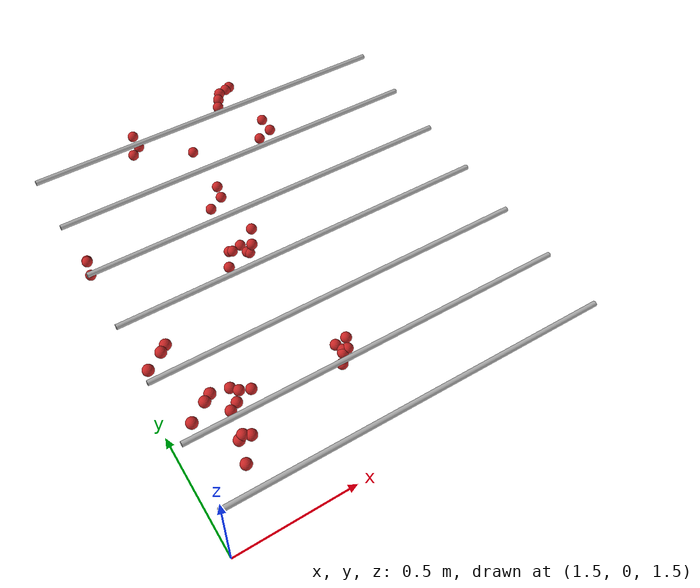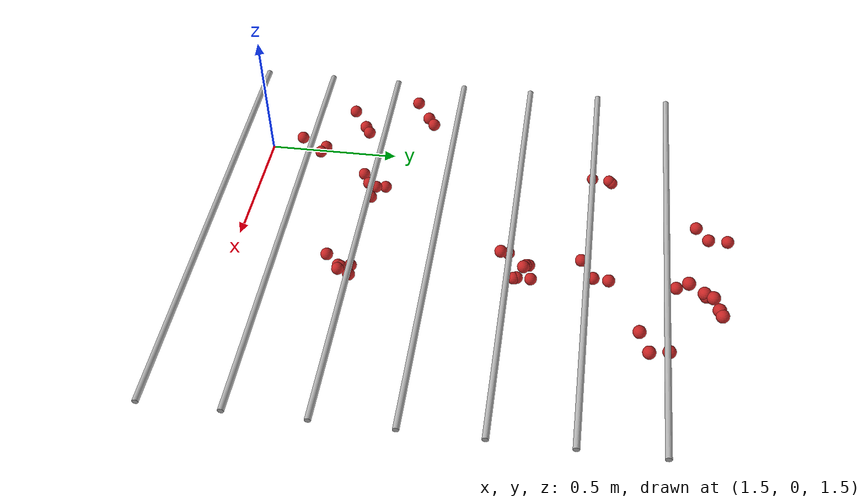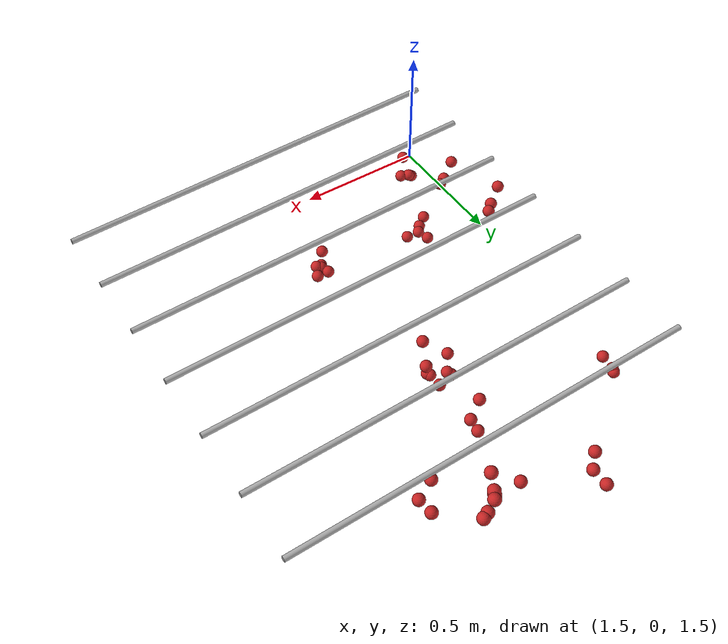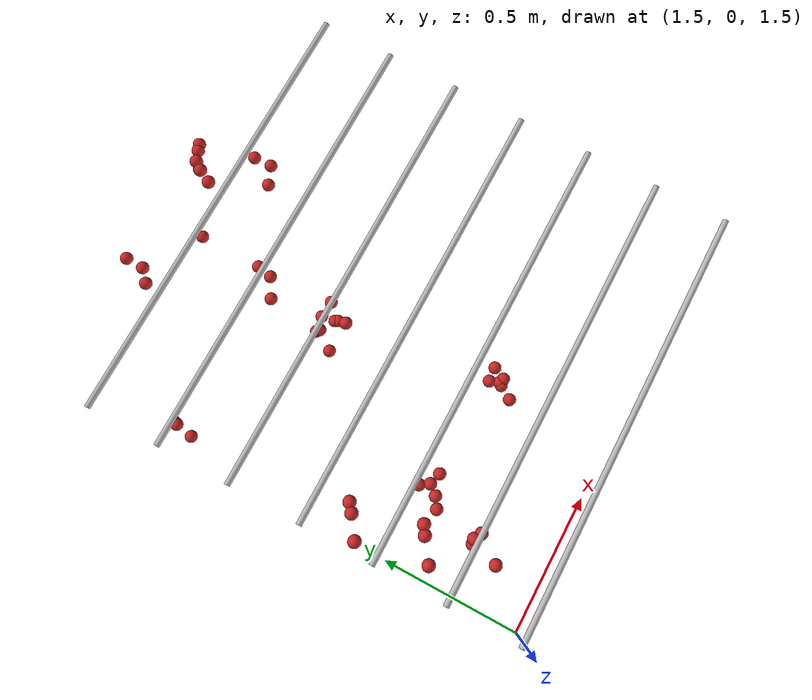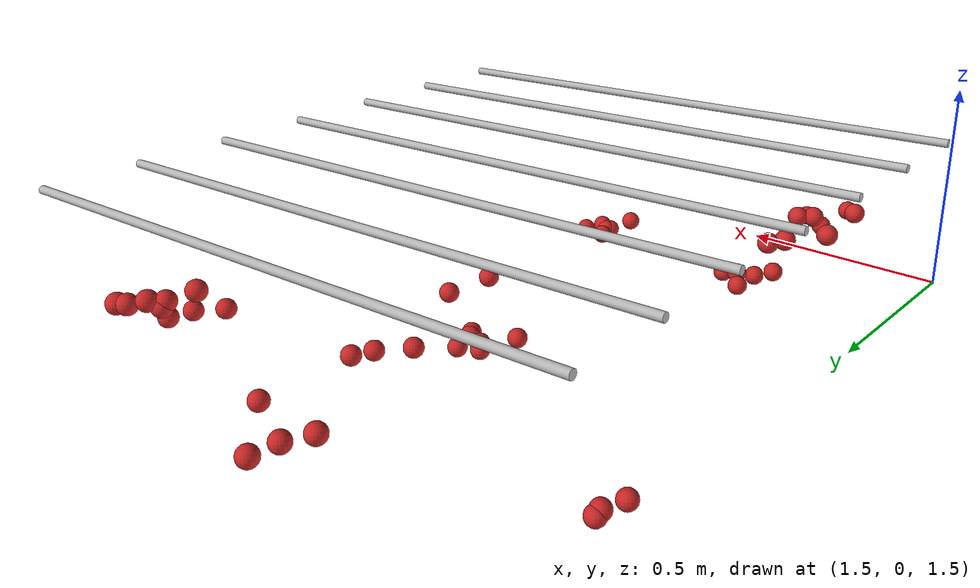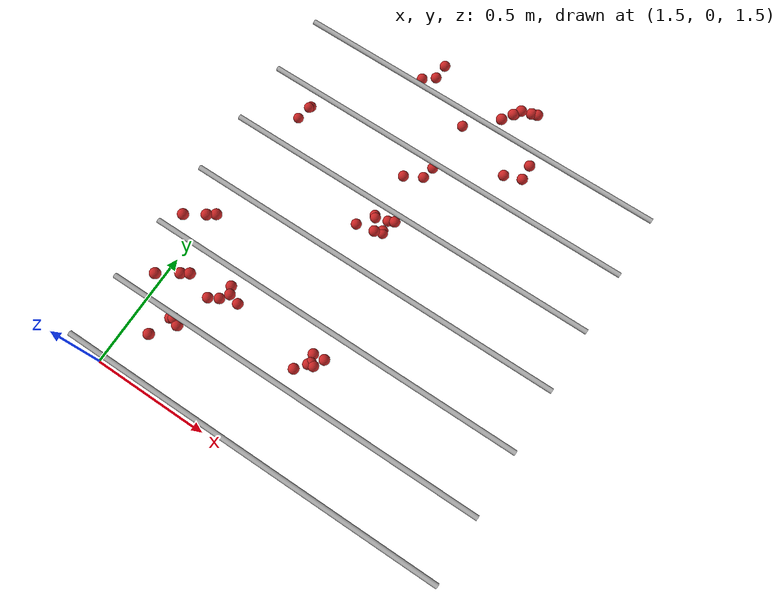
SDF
<sdf version="1.4">
 <model name="pergola">
  <link name="vine_1">
   <pose>2.25 0.03 1.85 0 -1.5374753309166493 0</pose>
   <collision name="collision">
    <geometry><cylinder><radius>0.01</radius><length>1.5008331019803633</length></cylinder></geometry>
   </collision>
   <visual name="visual">
    <geometry><cylinder><radius>0.01</radius><length>1.5008331019803633</length></cylinder></geometry>
    <material>
     <script>
      <uri>model://tree_trunk/materials/scripts</uri>
      <uri>model://tree_trunk/materials/textures</uri>
      <name>Tree/Bark</name>
     </script>
    </material>
   </visual>
   <inertial>
    <mass>5</mass>
    <inertia>
     <ixx>0.9386666666666668</ixx>
     <ixy>0.0</ixy>
     <ixz>0.0</ixz>
     <iyy>0.9386666666666668</iyy>
     <iyz>0.0</iyz>
     <izz>0.00025</izz>
    </inertia>
   </inertial>
  </link>
  <link name="vine_3">
   <pose>2.25 0.28 1.85 0 -1.5374753309166493 0</pose>
   <collision name="collision">
    <geometry><cylinder><radius>0.01</radius><length>1.5008331019803633</length></cylinder></geometry>
   </collision>
   <visual name="visual">
    <geometry><cylinder><radius>0.01</radius><length>1.5008331019803633</length></cylinder></geometry>
    <material>
     <script>
      <uri>model://tree_trunk/materials/scripts</uri>
      <uri>model://tree_trunk/materials/textures</uri>
      <name>Tree/Bark</name>
     </script>
    </material>
   </visual>
   <inertial>
    <mass>5</mass>
    <inertia>
     <ixx>0.9386666666666668</ixx>
     <ixy>0.0</ixy>
     <ixz>0.0</ixz>
     <iyy>0.9386666666666668</iyy>
     <iyz>0.0</iyz>
     <izz>0.00025</izz>
    </inertia>
   </inertial>
  </link>
  <link name="vine_5">
   <pose>2.25 0.53 1.85 0 -1.5374753309166493 0</pose>
   <collision name="collision">
    <geometry><cylinder><radius>0.01</radius><length>1.5008331019803633</length></cylinder></geometry>
   </collision>
   <visual name="visual">
    <geometry><cylinder><radius>0.01</radius><length>1.5008331019803633</length></cylinder></geometry>
    <material>
     <script>
      <uri>model://tree_trunk/materials/scripts</uri>
      <uri>model://tree_trunk/materials/textures</uri>
      <name>Tree/Bark</name>
     </script>
    </material>
   </visual>
   <inertial>
    <mass>5</mass>
    <inertia>
     <ixx>0.9386666666666668</ixx>
     <ixy>0.0</ixy>
     <ixz>0.0</ixz>
     <iyy>0.9386666666666668</iyy>
     <iyz>0.0</iyz>
     <izz>0.00025</izz>
    </inertia>
   </inertial>
  </link>
  <link name="vine_7">
   <pose>2.25 0.78 1.85 0 -1.5374753309166493 0</pose>
   <collision name="collision">
    <geometry><cylinder><radius>0.01</radius><length>1.5008331019803633</length></cylinder></geometry>
   </collision>
   <visual name="visual">
    <geometry><cylinder><radius>0.01</radius><length>1.5008331019803633</length></cylinder></geometry>
    <material>
     <script>
      <uri>model://tree_trunk/materials/scripts</uri>
      <uri>model://tree_trunk/materials/textures</uri>
      <name>Tree/Bark</name>
     </script>
    </material>
   </visual>
   <inertial>
    <mass>5</mass>
    <inertia>
     <ixx>0.9386666666666668</ixx>
     <ixy>0.0</ixy>
     <ixz>0.0</ixz>
     <iyy>0.9386666666666668</iyy>
     <iyz>0.0</iyz>
     <izz>0.00025</izz>
    </inertia>
   </inertial>
  </link>
  <link name="vine_9">
   <pose>2.25 1.03 1.85 0 -1.5374753309166493 0</pose>
   <collision name="collision">
    <geometry><cylinder><radius>0.01</radius><length>1.5008331019803633</length></cylinder></geometry>
   </collision>
   <visual name="visual">
    <geometry><cylinder><radius>0.01</radius><length>1.5008331019803633</length></cylinder></geometry>
    <material>
     <script>
      <uri>model://tree_trunk/materials/scripts</uri>
      <uri>model://tree_trunk/materials/textures</uri>
      <name>Tree/Bark</name>
     </script>
    </material>
   </visual>
   <inertial>
    <mass>5</mass>
    <inertia>
     <ixx>0.9386666666666668</ixx>
     <ixy>0.0</ixy>
     <ixz>0.0</ixz>
     <iyy>0.9386666666666668</iyy>
     <iyz>0.0</iyz>
     <izz>0.00025</izz>
    </inertia>
   </inertial>
  </link>
  <link name="vine_11">
   <pose>2.25 1.28 1.85 0 -1.5374753309166493 0</pose>
   <collision name="collision">
    <geometry><cylinder><radius>0.01</radius><length>1.5008331019803633</length></cylinder></geometry>
   </collision>
   <visual name="visual">
    <geometry><cylinder><radius>0.01</radius><length>1.5008331019803633</length></cylinder></geometry>
    <material>
     <script>
      <uri>model://tree_trunk/materials/scripts</uri>
      <uri>model://tree_trunk/materials/textures</uri>
      <name>Tree/Bark</name>
     </script>
    </material>
   </visual>
   <inertial>
    <mass>5</mass>
    <inertia>
     <ixx>0.9386666666666668</ixx>
     <ixy>0.0</ixy>
     <ixz>0.0</ixz>
     <iyy>0.9386666666666668</iyy>
     <iyz>0.0</iyz>
     <izz>0.00025</izz>
    </inertia>
   </inertial>
  </link>
  <link name="vine_13">
   <pose>2.25 1.53 1.85 0 -1.5374753309166493 0</pose>
   <collision name="collision">
    <geometry><cylinder><radius>0.01</radius><length>1.5008331019803633</length></cylinder></geometry>
   </collision>
   <visual name="visual">
    <geometry><cylinder><radius>0.01</radius><length>1.5008331019803633</length></cylinder></geometry>
    <material>
     <script>
      <uri>model://tree_trunk/materials/scripts</uri>
      <uri>model://tree_trunk/materials/textures</uri>
      <name>Tree/Bark</name>
     </script>
    </material>
   </visual>
   <inertial>
    <mass>5</mass>
    <inertia>
     <ixx>0.9386666666666668</ixx>
     <ixy>0.0</ixy>
     <ixz>0.0</ixz>
     <iyy>0.9386666666666668</iyy>
     <iyz>0.0</iyz>
     <izz>0.00025</izz>
    </inertia>
   </inertial>
  </link>
  <link name="fruit_3">
   <pose>1.5736449863518585 0.37467291053750623 1.7777445155400462 0 0 0</pose>
   <collision name="fruit_collision_3"><geometry><sphere><radius>0.022</radius></sphere></geometry></collision>
   <visual name="visual">
    <geometry><sphere><radius>0.022</radius></sphere></geometry>
    <material><script><name>Gazebo/Red</name></script></material>
   </visual>
   <inertial>
    <mass>0.05</mass>
    <inertia>
     <ixx>9.679999999999999e-06</ixx>
     <ixy>0.0</ixy>
     <ixz>0.0</ixz>
     <iyy>9.679999999999999e-06</iyy>
     <iyz>0.0</iyz>
     <izz>9.679999999999999e-06</izz>
    </inertia>
   </inertial>
   <sensor name="fruit_contact_3" type="contact">
    <plugin name="contact_plugin_3" filename="libcontact_plugin.so"/>
    <contact><collision>fruit_collision_3</collision><topic>fruit_contact_topic_3</topic></contact>
   </sensor>
  </link>
  <link name="fruit_4">
   <pose>2.1717858830482175 0.3793122889297164 1.6151100170771948 0 0 0</pose>
   <collision name="fruit_collision_4"><geometry><sphere><radius>0.022</radius></sphere></geometry></collision>
   <visual name="visual">
    <geometry><sphere><radius>0.022</radius></sphere></geometry>
    <material><script><name>Gazebo/Red</name></script></material>
   </visual>
   <inertial>
    <mass>0.05</mass>
    <inertia>
     <ixx>9.679999999999999e-06</ixx>
     <ixy>0.0</ixy>
     <ixz>0.0</ixz>
     <iyy>9.679999999999999e-06</iyy>
     <iyz>0.0</iyz>
     <izz>9.679999999999999e-06</izz>
    </inertia>
   </inertial>
   <sensor name="fruit_contact_4" type="contact">
    <plugin name="contact_plugin_4" filename="libcontact_plugin.so"/>
    <contact><collision>fruit_collision_4</collision><topic>fruit_contact_topic_4</topic></contact>
   </sensor>
  </link>
  <link name="fruit_5">
   <pose>2.436512426835862 1.4645015737508953 1.6743781641618984 0 0 0</pose>
   <collision name="fruit_collision_5"><geometry><sphere><radius>0.022</radius></sphere></geometry></collision>
   <visual name="visual">
    <geometry><sphere><radius>0.022</radius></sphere></geometry>
    <material><script><name>Gazebo/Red</name></script></material>
   </visual>
   <inertial>
    <mass>0.05</mass>
    <inertia>
     <ixx>9.679999999999999e-06</ixx>
     <ixy>0.0</ixy>
     <ixz>0.0</ixz>
     <iyy>9.679999999999999e-06</iyy>
     <iyz>0.0</iyz>
     <izz>9.679999999999999e-06</izz>
    </inertia>
   </inertial>
   <sensor name="fruit_contact_5" type="contact">
    <plugin name="contact_plugin_5" filename="libcontact_plugin.so"/>
    <contact><collision>fruit_collision_5</collision><topic>fruit_contact_topic_5</topic></contact>
   </sensor>
  </link>
  <link name="fruit_18">
   <pose>2.035879634276976 1.008971126581698 1.5604255976682984 0 0 0</pose>
   <collision name="fruit_collision_18"><geometry><sphere><radius>0.022</radius></sphere></geometry></collision>
   <visual name="visual">
    <geometry><sphere><radius>0.022</radius></sphere></geometry>
    <material><script><name>Gazebo/Red</name></script></material>
   </visual>
   <inertial>
    <mass>0.05</mass>
    <inertia>
     <ixx>9.679999999999999e-06</ixx>
     <ixy>0.0</ixy>
     <ixz>0.0</ixz>
     <iyy>9.679999999999999e-06</iyy>
     <iyz>0.0</iyz>
     <izz>9.679999999999999e-06</izz>
    </inertia>
   </inertial>
   <sensor name="fruit_contact_18" type="contact">
    <plugin name="contact_plugin_18" filename="libcontact_plugin.so"/>
    <contact><collision>fruit_collision_18</collision><topic>fruit_contact_topic_18</topic></contact>
   </sensor>
  </link>
  <link name="fruit_48">
   <pose>2.3215131274397627 1.6058059762667705 1.7977492052102593 0 0 0</pose>
   <collision name="fruit_collision_48"><geometry><sphere><radius>0.022</radius></sphere></geometry></collision>
   <visual name="visual">
    <geometry><sphere><radius>0.022</radius></sphere></geometry>
    <material><script><name>Gazebo/Red</name></script></material>
   </visual>
   <inertial>
    <mass>0.05</mass>
    <inertia>
     <ixx>9.679999999999999e-06</ixx>
     <ixy>0.0</ixy>
     <ixz>0.0</ixz>
     <iyy>9.679999999999999e-06</iyy>
     <iyz>0.0</iyz>
     <izz>9.679999999999999e-06</izz>
    </inertia>
   </inertial>
   <sensor name="fruit_contact_48" type="contact">
    <plugin name="contact_plugin_48" filename="libcontact_plugin.so"/>
    <contact><collision>fruit_collision_48</collision><topic>fruit_contact_topic_48</topic></contact>
   </sensor>
  </link>
  <link name="fruit_52">
   <pose>2.094065402320085 1.2670850391788817 1.6198830710406318 0 0 0</pose>
   <collision name="fruit_collision_52"><geometry><sphere><radius>0.022</radius></sphere></geometry></collision>
   <visual name="visual">
    <geometry><sphere><radius>0.022</radius></sphere></geometry>
    <material><script><name>Gazebo/Red</name></script></material>
   </visual>
   <inertial>
    <mass>0.05</mass>
    <inertia>
     <ixx>9.679999999999999e-06</ixx>
     <ixy>0.0</ixy>
     <ixz>0.0</ixz>
     <iyy>9.679999999999999e-06</iyy>
     <iyz>0.0</iyz>
     <izz>9.679999999999999e-06</izz>
    </inertia>
   </inertial>
   <sensor name="fruit_contact_52" type="contact">
    <plugin name="contact_plugin_52" filename="libcontact_plugin.so"/>
    <contact><collision>fruit_collision_52</collision><topic>fruit_contact_topic_52</topic></contact>
   </sensor>
  </link>
  <link name="fruit_68">
   <pose>2.1345572399262696 0.9882658919993869 1.6705639919445214 0 0 0</pose>
   <collision name="fruit_collision_68"><geometry><sphere><radius>0.022</radius></sphere></geometry></collision>
   <visual name="visual">
    <geometry><sphere><radius>0.022</radius></sphere></geometry>
    <material><script><name>Gazebo/Red</name></script></material>
   </visual>
   <inertial>
    <mass>0.05</mass>
    <inertia>
     <ixx>9.679999999999999e-06</ixx>
     <ixy>0.0</ixy>
     <ixz>0.0</ixz>
     <iyy>9.679999999999999e-06</iyy>
     <iyz>0.0</iyz>
     <izz>9.679999999999999e-06</izz>
    </inertia>
   </inertial>
   <sensor name="fruit_contact_68" type="contact">
    <plugin name="contact_plugin_68" filename="libcontact_plugin.so"/>
    <contact><collision>fruit_collision_68</collision><topic>fruit_contact_topic_68</topic></contact>
   </sensor>
  </link>
  <link name="fruit_73">
   <pose>1.6695004239881504 0.1841848540027483 1.7077127269283114 0 0 0</pose>
   <collision name="fruit_collision_73"><geometry><sphere><radius>0.022</radius></sphere></geometry></collision>
   <visual name="visual">
    <geometry><sphere><radius>0.022</radius></sphere></geometry>
    <material><script><name>Gazebo/Red</name></script></material>
   </visual>
   <inertial>
    <mass>0.05</mass>
    <inertia>
     <ixx>9.679999999999999e-06</ixx>
     <ixy>0.0</ixy>
     <ixz>0.0</ixz>
     <iyy>9.679999999999999e-06</iyy>
     <iyz>0.0</iyz>
     <izz>9.679999999999999e-06</izz>
    </inertia>
   </inertial>
   <sensor name="fruit_contact_73" type="contact">
    <plugin name="contact_plugin_73" filename="libcontact_plugin.so"/>
    <contact><collision>fruit_collision_73</collision><topic>fruit_contact_topic_73</topic></contact>
   </sensor>
  </link>
  <link name="fruit_101">
   <pose>1.9338799529893589 1.6602318989868712 1.6671867554878401 0 0 0</pose>
   <collision name="fruit_collision_101"><geometry><sphere><radius>0.022</radius></sphere></geometry></collision>
   <visual name="visual">
    <geometry><sphere><radius>0.022</radius></sphere></geometry>
    <material><script><name>Gazebo/Red</name></script></material>
   </visual>
   <inertial>
    <mass>0.05</mass>
    <inertia>
     <ixx>9.679999999999999e-06</ixx>
     <ixy>0.0</ixy>
     <ixz>0.0</ixz>
     <iyy>9.679999999999999e-06</iyy>
     <iyz>0.0</iyz>
     <izz>9.679999999999999e-06</izz>
    </inertia>
   </inertial>
   <sensor name="fruit_contact_101" type="contact">
    <plugin name="contact_plugin_101" filename="libcontact_plugin.so"/>
    <contact><collision>fruit_collision_101</collision><topic>fruit_contact_topic_101</topic></contact>
   </sensor>
  </link>
  <link name="fruit_125">
   <pose>1.5307923956397178 0.6107779919996729 1.8074419601326126 0 0 0</pose>
   <collision name="fruit_collision_125"><geometry><sphere><radius>0.022</radius></sphere></geometry></collision>
   <visual name="visual">
    <geometry><sphere><radius>0.022</radius></sphere></geometry>
    <material><script><name>Gazebo/Red</name></script></material>
   </visual>
   <inertial>
    <mass>0.05</mass>
    <inertia>
     <ixx>9.679999999999999e-06</ixx>
     <ixy>0.0</ixy>
     <ixz>0.0</ixz>
     <iyy>9.679999999999999e-06</iyy>
     <iyz>0.0</iyz>
     <izz>9.679999999999999e-06</izz>
    </inertia>
   </inertial>
   <sensor name="fruit_contact_125" type="contact">
    <plugin name="contact_plugin_125" filename="libcontact_plugin.so"/>
    <contact><collision>fruit_collision_125</collision><topic>fruit_contact_topic_125</topic></contact>
   </sensor>
  </link>
  <link name="fruit_136">
   <pose>2.1759219674361523 1.5942313469685356 1.6116825656169105 0 0 0</pose>
   <collision name="fruit_collision_136"><geometry><sphere><radius>0.022</radius></sphere></geometry></collision>
   <visual name="visual">
    <geometry><sphere><radius>0.022</radius></sphere></geometry>
    <material><script><name>Gazebo/Red</name></script></material>
   </visual>
   <inertial>
    <mass>0.05</mass>
    <inertia>
     <ixx>9.679999999999999e-06</ixx>
     <ixy>0.0</ixy>
     <ixz>0.0</ixz>
     <iyy>9.679999999999999e-06</iyy>
     <iyz>0.0</iyz>
     <izz>9.679999999999999e-06</izz>
    </inertia>
   </inertial>
   <sensor name="fruit_contact_136" type="contact">
    <plugin name="contact_plugin_136" filename="libcontact_plugin.so"/>
    <contact><collision>fruit_collision_136</collision><topic>fruit_contact_topic_136</topic></contact>
   </sensor>
  </link>
  <link name="fruit_142">
   <pose>1.73430438973402 0.4269522677267148 1.6068947176543336 0 0 0</pose>
   <collision name="fruit_collision_142"><geometry><sphere><radius>0.022</radius></sphere></geometry></collision>
   <visual name="visual">
    <geometry><sphere><radius>0.022</radius></sphere></geometry>
    <material><script><name>Gazebo/Red</name></script></material>
   </visual>
   <inertial>
    <mass>0.05</mass>
    <inertia>
     <ixx>9.679999999999999e-06</ixx>
     <ixy>0.0</ixy>
     <ixz>0.0</ixz>
     <iyy>9.679999999999999e-06</iyy>
     <iyz>0.0</iyz>
     <izz>9.679999999999999e-06</izz>
    </inertia>
   </inertial>
   <sensor name="fruit_contact_142" type="contact">
    <plugin name="contact_plugin_142" filename="libcontact_plugin.so"/>
    <contact><collision>fruit_collision_142</collision><topic>fruit_contact_topic_142</topic></contact>
   </sensor>
  </link>
  <link name="fruit_159">
   <pose>2.075999000548376 1.085627180114341 1.5495298476216397 0 0 0</pose>
   <collision name="fruit_collision_159"><geometry><sphere><radius>0.022</radius></sphere></geometry></collision>
   <visual name="visual">
    <geometry><sphere><radius>0.022</radius></sphere></geometry>
    <material><script><name>Gazebo/Red</name></script></material>
   </visual>
   <inertial>
    <mass>0.05</mass>
    <inertia>
     <ixx>9.679999999999999e-06</ixx>
     <ixy>0.0</ixy>
     <ixz>0.0</ixz>
     <iyy>9.679999999999999e-06</iyy>
     <iyz>0.0</iyz>
     <izz>9.679999999999999e-06</izz>
    </inertia>
   </inertial>
   <sensor name="fruit_contact_159" type="contact">
    <plugin name="contact_plugin_159" filename="libcontact_plugin.so"/>
    <contact><collision>fruit_collision_159</collision><topic>fruit_contact_topic_159</topic></contact>
   </sensor>
  </link>
  <link name="fruit_168">
   <pose>2.2107484910366497 0.43541437936749094 1.6004780351591839 0 0 0</pose>
   <collision name="fruit_collision_168"><geometry><sphere><radius>0.022</radius></sphere></geometry></collision>
   <visual name="visual">
    <geometry><sphere><radius>0.022</radius></sphere></geometry>
    <material><script><name>Gazebo/Red</name></script></material>
   </visual>
   <inertial>
    <mass>0.05</mass>
    <inertia>
     <ixx>9.679999999999999e-06</ixx>
     <ixy>0.0</ixy>
     <ixz>0.0</ixz>
     <iyy>9.679999999999999e-06</iyy>
     <iyz>0.0</iyz>
     <izz>9.679999999999999e-06</izz>
    </inertia>
   </inertial>
   <sensor name="fruit_contact_168" type="contact">
    <plugin name="contact_plugin_168" filename="libcontact_plugin.so"/>
    <contact><collision>fruit_collision_168</collision><topic>fruit_contact_topic_168</topic></contact>
   </sensor>
  </link>
  <link name="fruit_171">
   <pose>2.1443039836601874 1.036405044776063 1.5508276752647638 0 0 0</pose>
   <collision name="fruit_collision_171"><geometry><sphere><radius>0.022</radius></sphere></geometry></collision>
   <visual name="visual">
    <geometry><sphere><radius>0.022</radius></sphere></geometry>
    <material><script><name>Gazebo/Red</name></script></material>
   </visual>
   <inertial>
    <mass>0.05</mass>
    <inertia>
     <ixx>9.679999999999999e-06</ixx>
     <ixy>0.0</ixy>
     <ixz>0.0</ixz>
     <iyy>9.679999999999999e-06</iyy>
     <iyz>0.0</iyz>
     <izz>9.679999999999999e-06</izz>
    </inertia>
   </inertial>
   <sensor name="fruit_contact_171" type="contact">
    <plugin name="contact_plugin_171" filename="libcontact_plugin.so"/>
    <contact><collision>fruit_collision_171</collision><topic>fruit_contact_topic_171</topic></contact>
   </sensor>
  </link>
  <link name="fruit_179">
   <pose>1.735647835228457 0.26781263775044023 1.7030920837690873 0 0 0</pose>
   <collision name="fruit_collision_179"><geometry><sphere><radius>0.022</radius></sphere></geometry></collision>
   <visual name="visual">
    <geometry><sphere><radius>0.022</radius></sphere></geometry>
    <material><script><name>Gazebo/Red</name></script></material>
   </visual>
   <inertial>
    <mass>0.05</mass>
    <inertia>
     <ixx>9.679999999999999e-06</ixx>
     <ixy>0.0</ixy>
     <ixz>0.0</ixz>
     <iyy>9.679999999999999e-06</iyy>
     <iyz>0.0</iyz>
     <izz>9.679999999999999e-06</izz>
    </inertia>
   </inertial>
   <sensor name="fruit_contact_179" type="contact">
    <plugin name="contact_plugin_179" filename="libcontact_plugin.so"/>
    <contact><collision>fruit_collision_179</collision><topic>fruit_contact_topic_179</topic></contact>
   </sensor>
  </link>
  <link name="fruit_181">
   <pose>1.6763468045261274 0.4455128754409484 1.7657943366903457 0 0 0</pose>
   <collision name="fruit_collision_181"><geometry><sphere><radius>0.022</radius></sphere></geometry></collision>
   <visual name="visual">
    <geometry><sphere><radius>0.022</radius></sphere></geometry>
    <material><script><name>Gazebo/Red</name></script></material>
   </visual>
   <inertial>
    <mass>0.05</mass>
    <inertia>
     <ixx>9.679999999999999e-06</ixx>
     <ixy>0.0</ixy>
     <ixz>0.0</ixz>
     <iyy>9.679999999999999e-06</iyy>
     <iyz>0.0</iyz>
     <izz>9.679999999999999e-06</izz>
    </inertia>
   </inertial>
   <sensor name="fruit_contact_181" type="contact">
    <plugin name="contact_plugin_181" filename="libcontact_plugin.so"/>
    <contact><collision>fruit_collision_181</collision><topic>fruit_contact_topic_181</topic></contact>
   </sensor>
  </link>
  <link name="fruit_198">
   <pose>2.173593231065615 1.3646118962185136 1.6146989418621573 0 0 0</pose>
   <collision name="fruit_collision_198"><geometry><sphere><radius>0.022</radius></sphere></geometry></collision>
   <visual name="visual">
    <geometry><sphere><radius>0.022</radius></sphere></geometry>
    <material><script><name>Gazebo/Red</name></script></material>
   </visual>
   <inertial>
    <mass>0.05</mass>
    <inertia>
     <ixx>9.679999999999999e-06</ixx>
     <ixy>0.0</ixy>
     <ixz>0.0</ixz>
     <iyy>9.679999999999999e-06</iyy>
     <iyz>0.0</iyz>
     <izz>9.679999999999999e-06</izz>
    </inertia>
   </inertial>
   <sensor name="fruit_contact_198" type="contact">
    <plugin name="contact_plugin_198" filename="libcontact_plugin.so"/>
    <contact><collision>fruit_collision_198</collision><topic>fruit_contact_topic_198</topic></contact>
   </sensor>
  </link>
  <link name="fruit_223">
   <pose>2.405315956141363 1.7016135358593318 1.7784376767027 0 0 0</pose>
   <collision name="fruit_collision_223"><geometry><sphere><radius>0.022</radius></sphere></geometry></collision>
   <visual name="visual">
    <geometry><sphere><radius>0.022</radius></sphere></geometry>
    <material><script><name>Gazebo/Red</name></script></material>
   </visual>
   <inertial>
    <mass>0.05</mass>
    <inertia>
     <ixx>9.679999999999999e-06</ixx>
     <ixy>0.0</ixy>
     <ixz>0.0</ixz>
     <iyy>9.679999999999999e-06</iyy>
     <iyz>0.0</iyz>
     <izz>9.679999999999999e-06</izz>
    </inertia>
   </inertial>
   <sensor name="fruit_contact_223" type="contact">
    <plugin name="contact_plugin_223" filename="libcontact_plugin.so"/>
    <contact><collision>fruit_collision_223</collision><topic>fruit_contact_topic_223</topic></contact>
   </sensor>
  </link>
  <link name="fruit_246">
   <pose>1.6469486797288593 0.4271013861360184 1.766960459523073 0 0 0</pose>
   <collision name="fruit_collision_246"><geometry><sphere><radius>0.022</radius></sphere></geometry></collision>
   <visual name="visual">
    <geometry><sphere><radius>0.022</radius></sphere></geometry>
    <material><script><name>Gazebo/Red</name></script></material>
   </visual>
   <inertial>
    <mass>0.05</mass>
    <inertia>
     <ixx>9.679999999999999e-06</ixx>
     <ixy>0.0</ixy>
     <ixz>0.0</ixz>
     <iyy>9.679999999999999e-06</iyy>
     <iyz>0.0</iyz>
     <izz>9.679999999999999e-06</izz>
    </inertia>
   </inertial>
   <sensor name="fruit_contact_246" type="contact">
    <plugin name="contact_plugin_246" filename="libcontact_plugin.so"/>
    <contact><collision>fruit_collision_246</collision><topic>fruit_contact_topic_246</topic></contact>
   </sensor>
  </link>
  <link name="fruit_258">
   <pose>1.5495787426153778 1.294101280325152 1.5129294015614778 0 0 0</pose>
   <collision name="fruit_collision_258"><geometry><sphere><radius>0.022</radius></sphere></geometry></collision>
   <visual name="visual">
    <geometry><sphere><radius>0.022</radius></sphere></geometry>
    <material><script><name>Gazebo/Red</name></script></material>
   </visual>
   <inertial>
    <mass>0.05</mass>
    <inertia>
     <ixx>9.679999999999999e-06</ixx>
     <ixy>0.0</ixy>
     <ixz>0.0</ixz>
     <iyy>9.679999999999999e-06</iyy>
     <iyz>0.0</iyz>
     <izz>9.679999999999999e-06</izz>
    </inertia>
   </inertial>
   <sensor name="fruit_contact_258" type="contact">
    <plugin name="contact_plugin_258" filename="libcontact_plugin.so"/>
    <contact><collision>fruit_collision_258</collision><topic>fruit_contact_topic_258</topic></contact>
   </sensor>
  </link>
  <link name="fruit_273">
   <pose>2.198827590496443 0.4682011133986117 1.5978729778831464 0 0 0</pose>
   <collision name="fruit_collision_273"><geometry><sphere><radius>0.022</radius></sphere></geometry></collision>
   <visual name="visual">
    <geometry><sphere><radius>0.022</radius></sphere></geometry>
    <material><script><name>Gazebo/Red</name></script></material>
   </visual>
   <inertial>
    <mass>0.05</mass>
    <inertia>
     <ixx>9.679999999999999e-06</ixx>
     <ixy>0.0</ixy>
     <ixz>0.0</ixz>
     <iyy>9.679999999999999e-06</iyy>
     <iyz>0.0</iyz>
     <izz>9.679999999999999e-06</izz>
    </inertia>
   </inertial>
   <sensor name="fruit_contact_273" type="contact">
    <plugin name="contact_plugin_273" filename="libcontact_plugin.so"/>
    <contact><collision>fruit_collision_273</collision><topic>fruit_contact_topic_273</topic></contact>
   </sensor>
  </link>
  <link name="fruit_286">
   <pose>2.4266840468156237 1.710075657581609 1.7767864095144148 0 0 0</pose>
   <collision name="fruit_collision_286"><geometry><sphere><radius>0.022</radius></sphere></geometry></collision>
   <visual name="visual">
    <geometry><sphere><radius>0.022</radius></sphere></geometry>
    <material><script><name>Gazebo/Red</name></script></material>
   </visual>
   <inertial>
    <mass>0.05</mass>
    <inertia>
     <ixx>9.679999999999999e-06</ixx>
     <ixy>0.0</ixy>
     <ixz>0.0</ixz>
     <iyy>9.679999999999999e-06</iyy>
     <iyz>0.0</iyz>
     <izz>9.679999999999999e-06</izz>
    </inertia>
   </inertial>
   <sensor name="fruit_contact_286" type="contact">
    <plugin name="contact_plugin_286" filename="libcontact_plugin.so"/>
    <contact><collision>fruit_collision_286</collision><topic>fruit_contact_topic_286</topic></contact>
   </sensor>
  </link>
  <link name="fruit_293">
   <pose>1.8416321672698905 0.47207767859619815 1.5925208723098996 0 0 0</pose>
   <collision name="fruit_collision_293"><geometry><sphere><radius>0.022</radius></sphere></geometry></collision>
   <visual name="visual">
    <geometry><sphere><radius>0.022</radius></sphere></geometry>
    <material><script><name>Gazebo/Red</name></script></material>
   </visual>
   <inertial>
    <mass>0.05</mass>
    <inertia>
     <ixx>9.679999999999999e-06</ixx>
     <ixy>0.0</ixy>
     <ixz>0.0</ixz>
     <iyy>9.679999999999999e-06</iyy>
     <iyz>0.0</iyz>
     <izz>9.679999999999999e-06</izz>
    </inertia>
   </inertial>
   <sensor name="fruit_contact_293" type="contact">
    <plugin name="contact_plugin_293" filename="libcontact_plugin.so"/>
    <contact><collision>fruit_collision_293</collision><topic>fruit_contact_topic_293</topic></contact>
   </sensor>
  </link>
  <link name="fruit_294">
   <pose>1.79809266726826 0.4839324093066804 1.6056226943106116 0 0 0</pose>
   <collision name="fruit_collision_294"><geometry><sphere><radius>0.022</radius></sphere></geometry></collision>
   <visual name="visual">
    <geometry><sphere><radius>0.022</radius></sphere></geometry>
    <material><script><name>Gazebo/Red</name></script></material>
   </visual>
   <inertial>
    <mass>0.05</mass>
    <inertia>
     <ixx>9.679999999999999e-06</ixx>
     <ixy>0.0</ixy>
     <ixz>0.0</ixz>
     <iyy>9.679999999999999e-06</iyy>
     <iyz>0.0</iyz>
     <izz>9.679999999999999e-06</izz>
    </inertia>
   </inertial>
   <sensor name="fruit_contact_294" type="contact">
    <plugin name="contact_plugin_294" filename="libcontact_plugin.so"/>
    <contact><collision>fruit_collision_294</collision><topic>fruit_contact_topic_294</topic></contact>
   </sensor>
  </link>
  <link name="fruit_298">
   <pose>2.5019630802439754 1.5594176255135848 1.6693414916306764 0 0 0</pose>
   <collision name="fruit_collision_298"><geometry><sphere><radius>0.022</radius></sphere></geometry></collision>
   <visual name="visual">
    <geometry><sphere><radius>0.022</radius></sphere></geometry>
    <material><script><name>Gazebo/Red</name></script></material>
   </visual>
   <inertial>
    <mass>0.05</mass>
    <inertia>
     <ixx>9.679999999999999e-06</ixx>
     <ixy>0.0</ixy>
     <ixz>0.0</ixz>
     <iyy>9.679999999999999e-06</iyy>
     <iyz>0.0</iyz>
     <izz>9.679999999999999e-06</izz>
    </inertia>
   </inertial>
   <sensor name="fruit_contact_298" type="contact">
    <plugin name="contact_plugin_298" filename="libcontact_plugin.so"/>
    <contact><collision>fruit_collision_298</collision><topic>fruit_contact_topic_298</topic></contact>
   </sensor>
  </link>
  <link name="fruit_306">
   <pose>1.6927374251299903 0.2774909455135123 1.6904193169059436 0 0 0</pose>
   <collision name="fruit_collision_306"><geometry><sphere><radius>0.022</radius></sphere></geometry></collision>
   <visual name="visual">
    <geometry><sphere><radius>0.022</radius></sphere></geometry>
    <material><script><name>Gazebo/Red</name></script></material>
   </visual>
   <inertial>
    <mass>0.05</mass>
    <inertia>
     <ixx>9.679999999999999e-06</ixx>
     <ixy>0.0</ixy>
     <ixz>0.0</ixz>
     <iyy>9.679999999999999e-06</iyy>
     <iyz>0.0</iyz>
     <izz>9.679999999999999e-06</izz>
    </inertia>
   </inertial>
   <sensor name="fruit_contact_306" type="contact">
    <plugin name="contact_plugin_306" filename="libcontact_plugin.so"/>
    <contact><collision>fruit_collision_306</collision><topic>fruit_contact_topic_306</topic></contact>
   </sensor>
  </link>
  <link name="fruit_314">
   <pose>1.5619543679647467 1.3576394160265524 1.520666059669459 0 0 0</pose>
   <collision name="fruit_collision_314"><geometry><sphere><radius>0.022</radius></sphere></geometry></collision>
   <visual name="visual">
    <geometry><sphere><radius>0.022</radius></sphere></geometry>
    <material><script><name>Gazebo/Red</name></script></material>
   </visual>
   <inertial>
    <mass>0.05</mass>
    <inertia>
     <ixx>9.679999999999999e-06</ixx>
     <ixy>0.0</ixy>
     <ixz>0.0</ixz>
     <iyy>9.679999999999999e-06</iyy>
     <iyz>0.0</iyz>
     <izz>9.679999999999999e-06</izz>
    </inertia>
   </inertial>
   <sensor name="fruit_contact_314" type="contact">
    <plugin name="contact_plugin_314" filename="libcontact_plugin.so"/>
    <contact><collision>fruit_collision_314</collision><topic>fruit_contact_topic_314</topic></contact>
   </sensor>
  </link>
  <link name="fruit_323">
   <pose>2.3474966739154706 1.65595954846978 1.7859395894426762 0 0 0</pose>
   <collision name="fruit_collision_323"><geometry><sphere><radius>0.022</radius></sphere></geometry></collision>
   <visual name="visual">
    <geometry><sphere><radius>0.022</radius></sphere></geometry>
    <material><script><name>Gazebo/Red</name></script></material>
   </visual>
   <inertial>
    <mass>0.05</mass>
    <inertia>
     <ixx>9.679999999999999e-06</ixx>
     <ixy>0.0</ixy>
     <ixz>0.0</ixz>
     <iyy>9.679999999999999e-06</iyy>
     <iyz>0.0</iyz>
     <izz>9.679999999999999e-06</izz>
    </inertia>
   </inertial>
   <sensor name="fruit_contact_323" type="contact">
    <plugin name="contact_plugin_323" filename="libcontact_plugin.so"/>
    <contact><collision>fruit_collision_323</collision><topic>fruit_contact_topic_323</topic></contact>
   </sensor>
  </link>
  <link name="fruit_344">
   <pose>1.9763428996321248 1.703589873146074 1.6547707183930687 0 0 0</pose>
   <collision name="fruit_collision_344"><geometry><sphere><radius>0.022</radius></sphere></geometry></collision>
   <visual name="visual">
    <geometry><sphere><radius>0.022</radius></sphere></geometry>
    <material><script><name>Gazebo/Red</name></script></material>
   </visual>
   <inertial>
    <mass>0.05</mass>
    <inertia>
     <ixx>9.679999999999999e-06</ixx>
     <ixy>0.0</ixy>
     <ixz>0.0</ixz>
     <iyy>9.679999999999999e-06</iyy>
     <iyz>0.0</iyz>
     <izz>9.679999999999999e-06</izz>
    </inertia>
   </inertial>
   <sensor name="fruit_contact_344" type="contact">
    <plugin name="contact_plugin_344" filename="libcontact_plugin.so"/>
    <contact><collision>fruit_collision_344</collision><topic>fruit_contact_topic_344</topic></contact>
   </sensor>
  </link>
  <link name="fruit_369">
   <pose>1.7704969766911245 0.45032708348900746 1.5957289083838297 0 0 0</pose>
   <collision name="fruit_collision_369"><geometry><sphere><radius>0.022</radius></sphere></geometry></collision>
   <visual name="visual">
    <geometry><sphere><radius>0.022</radius></sphere></geometry>
    <material><script><name>Gazebo/Red</name></script></material>
   </visual>
   <inertial>
    <mass>0.05</mass>
    <inertia>
     <ixx>9.679999999999999e-06</ixx>
     <ixy>0.0</ixy>
     <ixz>0.0</ixz>
     <iyy>9.679999999999999e-06</iyy>
     <iyz>0.0</iyz>
     <izz>9.679999999999999e-06</izz>
    </inertia>
   </inertial>
   <sensor name="fruit_contact_369" type="contact">
    <plugin name="contact_plugin_369" filename="libcontact_plugin.so"/>
    <contact><collision>fruit_collision_369</collision><topic>fruit_contact_topic_369</topic></contact>
   </sensor>
  </link>
  <link name="fruit_375">
   <pose>2.16296393342267 1.3114812347938234 1.6081391037583723 0 0 0</pose>
   <collision name="fruit_collision_375"><geometry><sphere><radius>0.022</radius></sphere></geometry></collision>
   <visual name="visual">
    <geometry><sphere><radius>0.022</radius></sphere></geometry>
    <material><script><name>Gazebo/Red</name></script></material>
   </visual>
   <inertial>
    <mass>0.05</mass>
    <inertia>
     <ixx>9.679999999999999e-06</ixx>
     <ixy>0.0</ixy>
     <ixz>0.0</ixz>
     <iyy>9.679999999999999e-06</iyy>
     <iyz>0.0</iyz>
     <izz>9.679999999999999e-06</izz>
    </inertia>
   </inertial>
   <sensor name="fruit_contact_375" type="contact">
    <plugin name="contact_plugin_375" filename="libcontact_plugin.so"/>
    <contact><collision>fruit_collision_375</collision><topic>fruit_contact_topic_375</topic></contact>
   </sensor>
  </link>
  <link name="fruit_393">
   <pose>2.1772841035975627 1.0710486933634547 1.6491073929465712 0 0 0</pose>
   <collision name="fruit_collision_393"><geometry><sphere><radius>0.022</radius></sphere></geometry></collision>
   <visual name="visual">
    <geometry><sphere><radius>0.022</radius></sphere></geometry>
    <material><script><name>Gazebo/Red</name></script></material>
   </visual>
   <inertial>
    <mass>0.05</mass>
    <inertia>
     <ixx>9.679999999999999e-06</ixx>
     <ixy>0.0</ixy>
     <ixz>0.0</ixz>
     <iyy>9.679999999999999e-06</iyy>
     <iyz>0.0</iyz>
     <izz>9.679999999999999e-06</izz>
    </inertia>
   </inertial>
   <sensor name="fruit_contact_393" type="contact">
    <plugin name="contact_plugin_393" filename="libcontact_plugin.so"/>
    <contact><collision>fruit_collision_393</collision><topic>fruit_contact_topic_393</topic></contact>
   </sensor>
  </link>
  <link name="fruit_395">
   <pose>2.2040571787620764 0.42521743942453577 1.5984344173578202 0 0 0</pose>
   <collision name="fruit_collision_395"><geometry><sphere><radius>0.022</radius></sphere></geometry></collision>
   <visual name="visual">
    <geometry><sphere><radius>0.022</radius></sphere></geometry>
    <material><script><name>Gazebo/Red</name></script></material>
   </visual>
   <inertial>
    <mass>0.05</mass>
    <inertia>
     <ixx>9.679999999999999e-06</ixx>
     <ixy>0.0</ixy>
     <ixz>0.0</ixz>
     <iyy>9.679999999999999e-06</iyy>
     <iyz>0.0</iyz>
     <izz>9.679999999999999e-06</izz>
    </inertia>
   </inertial>
   <sensor name="fruit_contact_395" type="contact">
    <plugin name="contact_plugin_395" filename="libcontact_plugin.so"/>
    <contact><collision>fruit_collision_395</collision><topic>fruit_contact_topic_395</topic></contact>
   </sensor>
  </link>
  <link name="fruit_397">
   <pose>2.226577631044165 0.4289494319191704 1.60620107282986 0 0 0</pose>
   <collision name="fruit_collision_397"><geometry><sphere><radius>0.022</radius></sphere></geometry></collision>
   <visual name="visual">
    <geometry><sphere><radius>0.022</radius></sphere></geometry>
    <material><script><name>Gazebo/Red</name></script></material>
   </visual>
   <inertial>
    <mass>0.05</mass>
    <inertia>
     <ixx>9.679999999999999e-06</ixx>
     <ixy>0.0</ixy>
     <ixz>0.0</ixz>
     <iyy>9.679999999999999e-06</iyy>
     <iyz>0.0</iyz>
     <izz>9.679999999999999e-06</izz>
    </inertia>
   </inertial>
   <sensor name="fruit_contact_397" type="contact">
    <plugin name="contact_plugin_397" filename="libcontact_plugin.so"/>
    <contact><collision>fruit_collision_397</collision><topic>fruit_contact_topic_397</topic></contact>
   </sensor>
  </link>
  <link name="fruit_409">
   <pose>2.350528889661986 1.6633562815578156 1.7763350636144069 0 0 0</pose>
   <collision name="fruit_collision_409"><geometry><sphere><radius>0.022</radius></sphere></geometry></collision>
   <visual name="visual">
    <geometry><sphere><radius>0.022</radius></sphere></geometry>
    <material><script><name>Gazebo/Red</name></script></material>
   </visual>
   <inertial>
    <mass>0.05</mass>
    <inertia>
     <ixx>9.679999999999999e-06</ixx>
     <ixy>0.0</ixy>
     <ixz>0.0</ixz>
     <iyy>9.679999999999999e-06</iyy>
     <iyz>0.0</iyz>
     <izz>9.679999999999999e-06</izz>
    </inertia>
   </inertial>
   <sensor name="fruit_contact_409" type="contact">
    <plugin name="contact_plugin_409" filename="libcontact_plugin.so"/>
    <contact><collision>fruit_collision_409</collision><topic>fruit_contact_topic_409</topic></contact>
   </sensor>
  </link>
  <link name="fruit_410">
   <pose>1.7094228431967387 0.28244711517484455 1.7062690123994104 0 0 0</pose>
   <collision name="fruit_collision_410"><geometry><sphere><radius>0.022</radius></sphere></geometry></collision>
   <visual name="visual">
    <geometry><sphere><radius>0.022</radius></sphere></geometry>
    <material><script><name>Gazebo/Red</name></script></material>
   </visual>
   <inertial>
    <mass>0.05</mass>
    <inertia>
     <ixx>9.679999999999999e-06</ixx>
     <ixy>0.0</ixy>
     <ixz>0.0</ixz>
     <iyy>9.679999999999999e-06</iyy>
     <iyz>0.0</iyz>
     <izz>9.679999999999999e-06</izz>
    </inertia>
   </inertial>
   <sensor name="fruit_contact_410" type="contact">
    <plugin name="contact_plugin_410" filename="libcontact_plugin.so"/>
    <contact><collision>fruit_collision_410</collision><topic>fruit_contact_topic_410</topic></contact>
   </sensor>
  </link>
  <link name="fruit_423">
   <pose>1.5998207347238167 0.6603579584966823 1.793632726449099 0 0 0</pose>
   <collision name="fruit_collision_423"><geometry><sphere><radius>0.022</radius></sphere></geometry></collision>
   <visual name="visual">
    <geometry><sphere><radius>0.022</radius></sphere></geometry>
    <material><script><name>Gazebo/Red</name></script></material>
   </visual>
   <inertial>
    <mass>0.05</mass>
    <inertia>
     <ixx>9.679999999999999e-06</ixx>
     <ixy>0.0</ixy>
     <ixz>0.0</ixz>
     <iyy>9.679999999999999e-06</iyy>
     <iyz>0.0</iyz>
     <izz>9.679999999999999e-06</izz>
    </inertia>
   </inertial>
   <sensor name="fruit_contact_423" type="contact">
    <plugin name="contact_plugin_423" filename="libcontact_plugin.so"/>
    <contact><collision>fruit_collision_423</collision><topic>fruit_contact_topic_423</topic></contact>
   </sensor>
  </link>
  <link name="fruit_429">
   <pose>2.5054118464036055 1.4970286117513585 1.6609785818976366 0 0 0</pose>
   <collision name="fruit_collision_429"><geometry><sphere><radius>0.022</radius></sphere></geometry></collision>
   <visual name="visual">
    <geometry><sphere><radius>0.022</radius></sphere></geometry>
    <material><script><name>Gazebo/Red</name></script></material>
   </visual>
   <inertial>
    <mass>0.05</mass>
    <inertia>
     <ixx>9.679999999999999e-06</ixx>
     <ixy>0.0</ixy>
     <ixz>0.0</ixz>
     <iyy>9.679999999999999e-06</iyy>
     <iyz>0.0</iyz>
     <izz>9.679999999999999e-06</izz>
    </inertia>
   </inertial>
   <sensor name="fruit_contact_429" type="contact">
    <plugin name="contact_plugin_429" filename="libcontact_plugin.so"/>
    <contact><collision>fruit_collision_429</collision><topic>fruit_contact_topic_429</topic></contact>
   </sensor>
  </link>
  <link name="fruit_431">
   <pose>1.7776120599972594 0.5164418979250824 1.5902818769493023 0 0 0</pose>
   <collision name="fruit_collision_431"><geometry><sphere><radius>0.022</radius></sphere></geometry></collision>
   <visual name="visual">
    <geometry><sphere><radius>0.022</radius></sphere></geometry>
    <material><script><name>Gazebo/Red</name></script></material>
   </visual>
   <inertial>
    <mass>0.05</mass>
    <inertia>
     <ixx>9.679999999999999e-06</ixx>
     <ixy>0.0</ixy>
     <ixz>0.0</ixz>
     <iyy>9.679999999999999e-06</iyy>
     <iyz>0.0</iyz>
     <izz>9.679999999999999e-06</izz>
    </inertia>
   </inertial>
   <sensor name="fruit_contact_431" type="contact">
    <plugin name="contact_plugin_431" filename="libcontact_plugin.so"/>
    <contact><collision>fruit_collision_431</collision><topic>fruit_contact_topic_431</topic></contact>
   </sensor>
  </link>
  <link name="fruit_441">
   <pose>2.3667771560718247 1.6825636465665783 1.790388714838134 0 0 0</pose>
   <collision name="fruit_collision_441"><geometry><sphere><radius>0.022</radius></sphere></geometry></collision>
   <visual name="visual">
    <geometry><sphere><radius>0.022</radius></sphere></geometry>
    <material><script><name>Gazebo/Red</name></script></material>
   </visual>
   <inertial>
    <mass>0.05</mass>
    <inertia>
     <ixx>9.679999999999999e-06</ixx>
     <ixy>0.0</ixy>
     <ixz>0.0</ixz>
     <iyy>9.679999999999999e-06</iyy>
     <iyz>0.0</iyz>
     <izz>9.679999999999999e-06</izz>
    </inertia>
   </inertial>
   <sensor name="fruit_contact_441" type="contact">
    <plugin name="contact_plugin_441" filename="libcontact_plugin.so"/>
    <contact><collision>fruit_collision_441</collision><topic>fruit_contact_topic_441</topic></contact>
   </sensor>
  </link>
  <link name="fruit_446">
   <pose>2.132339506159244 1.0964088913743388 1.5412054244963025 0 0 0</pose>
   <collision name="fruit_collision_446"><geometry><sphere><radius>0.022</radius></sphere></geometry></collision>
   <visual name="visual">
    <geometry><sphere><radius>0.022</radius></sphere></geometry>
    <material><script><name>Gazebo/Red</name></script></material>
   </visual>
   <inertial>
    <mass>0.05</mass>
    <inertia>
     <ixx>9.679999999999999e-06</ixx>
     <ixy>0.0</ixy>
     <ixz>0.0</ixz>
     <iyy>9.679999999999999e-06</iyy>
     <iyz>0.0</iyz>
     <izz>9.679999999999999e-06</izz>
    </inertia>
   </inertial>
   <sensor name="fruit_contact_446" type="contact">
    <plugin name="contact_plugin_446" filename="libcontact_plugin.so"/>
    <contact><collision>fruit_collision_446</collision><topic>fruit_contact_topic_446</topic></contact>
   </sensor>
  </link>
  <link name="fruit_455">
   <pose>1.9787529913349147 1.7689595909585307 1.6575537564801486 0 0 0</pose>
   <collision name="fruit_collision_455"><geometry><sphere><radius>0.022</radius></sphere></geometry></collision>
   <visual name="visual">
    <geometry><sphere><radius>0.022</radius></sphere></geometry>
    <material><script><name>Gazebo/Red</name></script></material>
   </visual>
   <inertial>
    <mass>0.05</mass>
    <inertia>
     <ixx>9.679999999999999e-06</ixx>
     <ixy>0.0</ixy>
     <ixz>0.0</ixz>
     <iyy>9.679999999999999e-06</iyy>
     <iyz>0.0</iyz>
     <izz>9.679999999999999e-06</izz>
    </inertia>
   </inertial>
   <sensor name="fruit_contact_455" type="contact">
    <plugin name="contact_plugin_455" filename="libcontact_plugin.so"/>
    <contact><collision>fruit_collision_455</collision><topic>fruit_contact_topic_455</topic></contact>
   </sensor>
  </link>
  <link name="fruit_460">
   <pose>2.247313027931745 0.47188266600506723 1.6045374428084955 0 0 0</pose>
   <collision name="fruit_collision_460"><geometry><sphere><radius>0.022</radius></sphere></geometry></collision>
   <visual name="visual">
    <geometry><sphere><radius>0.022</radius></sphere></geometry>
    <material><script><name>Gazebo/Red</name></script></material>
   </visual>
   <inertial>
    <mass>0.05</mass>
    <inertia>
     <ixx>9.679999999999999e-06</ixx>
     <ixy>0.0</ixy>
     <ixz>0.0</ixz>
     <iyy>9.679999999999999e-06</iyy>
     <iyz>0.0</iyz>
     <izz>9.679999999999999e-06</izz>
    </inertia>
   </inertial>
   <sensor name="fruit_contact_460" type="contact">
    <plugin name="contact_plugin_460" filename="libcontact_plugin.so"/>
    <contact><collision>fruit_collision_460</collision><topic>fruit_contact_topic_460</topic></contact>
   </sensor>
  </link>
  <link name="fruit_470">
   <pose>2.1389507789189426 1.047038080291581 1.548778068081882 0 0 0</pose>
   <collision name="fruit_collision_470"><geometry><sphere><radius>0.022</radius></sphere></geometry></collision>
   <visual name="visual">
    <geometry><sphere><radius>0.022</radius></sphere></geometry>
    <material><script><name>Gazebo/Red</name></script></material>
   </visual>
   <inertial>
    <mass>0.05</mass>
    <inertia>
     <ixx>9.679999999999999e-06</ixx>
     <ixy>0.0</ixy>
     <ixz>0.0</ixz>
     <iyy>9.679999999999999e-06</iyy>
     <iyz>0.0</iyz>
     <izz>9.679999999999999e-06</izz>
    </inertia>
   </inertial>
   <sensor name="fruit_contact_470" type="contact">
    <plugin name="contact_plugin_470" filename="libcontact_plugin.so"/>
    <contact><collision>fruit_collision_470</collision><topic>fruit_contact_topic_470</topic></contact>
   </sensor>
  </link>
  <link name="fruit_474">
   <pose>2.085270430327956 1.0748312582608173 1.5583150091654296 0 0 0</pose>
   <collision name="fruit_collision_474"><geometry><sphere><radius>0.022</radius></sphere></geometry></collision>
   <visual name="visual">
    <geometry><sphere><radius>0.022</radius></sphere></geometry>
    <material><script><name>Gazebo/Red</name></script></material>
   </visual>
   <inertial>
    <mass>0.05</mass>
    <inertia>
     <ixx>9.679999999999999e-06</ixx>
     <ixy>0.0</ixy>
     <ixz>0.0</ixz>
     <iyy>9.679999999999999e-06</iyy>
     <iyz>0.0</iyz>
     <izz>9.679999999999999e-06</izz>
    </inertia>
   </inertial>
   <sensor name="fruit_contact_474" type="contact">
    <plugin name="contact_plugin_474" filename="libcontact_plugin.so"/>
    <contact><collision>fruit_collision_474</collision><topic>fruit_contact_topic_474</topic></contact>
   </sensor>
  </link>
  <link name="fruit_481">
   <pose>1.6269540465117924 0.6828353074988414 1.7872603622012808 0 0 0</pose>
   <collision name="fruit_collision_481"><geometry><sphere><radius>0.022</radius></sphere></geometry></collision>
   <visual name="visual">
    <geometry><sphere><radius>0.022</radius></sphere></geometry>
    <material><script><name>Gazebo/Red</name></script></material>
   </visual>
   <inertial>
    <mass>0.05</mass>
    <inertia>
     <ixx>9.679999999999999e-06</ixx>
     <ixy>0.0</ixy>
     <ixz>0.0</ixz>
     <iyy>9.679999999999999e-06</iyy>
     <iyz>0.0</iyz>
     <izz>9.679999999999999e-06</izz>
    </inertia>
   </inertial>
   <sensor name="fruit_contact_481" type="contact">
    <plugin name="contact_plugin_481" filename="libcontact_plugin.so"/>
    <contact><collision>fruit_collision_481</collision><topic>fruit_contact_topic_481</topic></contact>
   </sensor>
  </link>
  <link name="fruit_486">
   <pose>1.5645398481393382 1.3688522034943558 1.5127676835802089 0 0 0</pose>
   <collision name="fruit_collision_486"><geometry><sphere><radius>0.022</radius></sphere></geometry></collision>
   <visual name="visual">
    <geometry><sphere><radius>0.022</radius></sphere></geometry>
    <material><script><name>Gazebo/Red</name></script></material>
   </visual>
   <inertial>
    <mass>0.05</mass>
    <inertia>
     <ixx>9.679999999999999e-06</ixx>
     <ixy>0.0</ixy>
     <ixz>0.0</ixz>
     <iyy>9.679999999999999e-06</iyy>
     <iyz>0.0</iyz>
     <izz>9.679999999999999e-06</izz>
    </inertia>
   </inertial>
   <sensor name="fruit_contact_486" type="contact">
    <plugin name="contact_plugin_486" filename="libcontact_plugin.so"/>
    <contact><collision>fruit_collision_486</collision><topic>fruit_contact_topic_486</topic></contact>
   </sensor>
  </link>
 </model>
</sdf>
